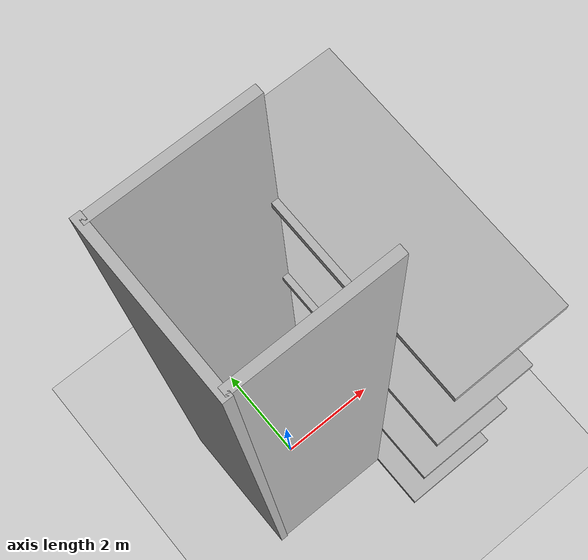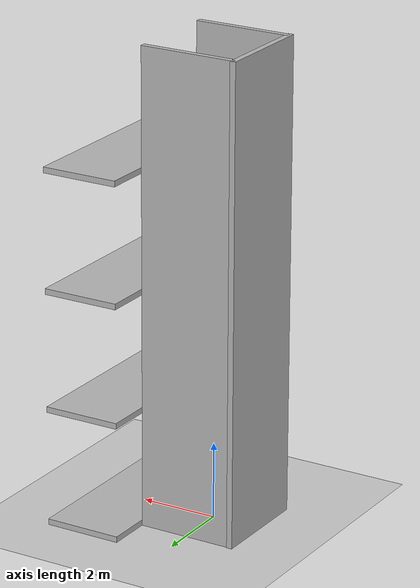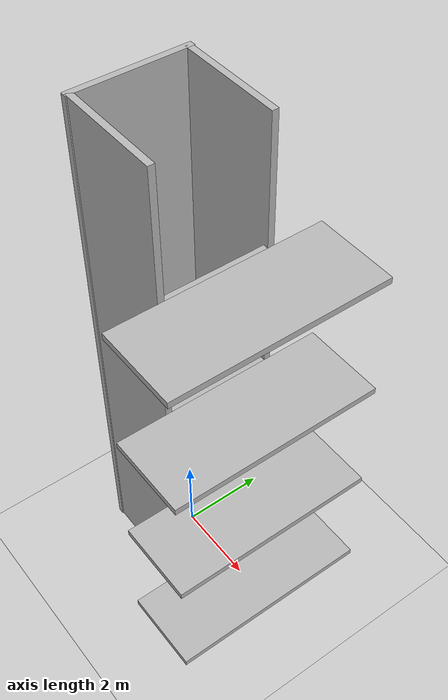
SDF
<?xml version="1.0" ?>
<sdf version="1.5">
  <world name="default">

    <!-- A global light source -->
    <include>
      <uri>model://sun</uri>
    </include>

    <!-- A ground plane -->
    <include>
      <uri>model://ground_plane</uri>
    </include>

    <!-- World plugin that publishes event messages.
         The topics used in these messages match up with topics used by the
         plugin in the elevator model below.
    -->
    <plugin filename="libSimEventsPlugin.so" name="elevator_event_plugin">
      <!-- Region on the ground floor, in front of the elevator -->
      <region>
        <name>region1</name>
        <volume>
          <min>1.5 -1 0</min>
          <max>2.5 1 1</max>
        </volume>
      </region>

      <!-- Region on the first floor, in front of the elevator -->
      <region>
        <name>region2</name>
        <volume>
          <min>1.5 -1 3</min>
          <max>2.5 1 4</max>
        </volume>
      </region>

      <!-- Event publisher for ground floor-->
      <event>
        <name>region1_event</name>
        <type>occupied</type>
        <region>region1</region>
        <topic>~/elevator</topic>
        <msg_data>0</msg_data>
      </event>

      <!-- Event publisher for first floor-->
      <event>
        <name>region2_event</name>
        <type>occupied</type>
        <region>region2</region>
        <topic>~/elevator</topic>
        <msg_data>1</msg_data>
      </event>
    </plugin>

    <!-- The elevator car -->
    <model name="elevator">
      <pose>0 0 0.075 0 0 0</pose>
      <link name="link">
        <inertial>
          <mass>800</mass>
        </inertial>

        <collision name="floor_collision">
          <geometry>
            <box>
              <size>2.25 2.25 0.15</size>
            </box>
          </geometry>
        </collision>
        <visual name="floor_visual">
          <geometry>
            <box>
              <size>2.25 2.25 0.15</size>
            </box>
          </geometry>
        </visual>

        <!-- wall1_collision is the wall to the right of the door, when
             facing the door -->
        <collision name="wall1_collision">
          <pose>1.0745 0.5725 1.125 0 0 0</pose>
          <geometry>
            <box>
              <size>0.1 1.15 2.25</size>
            </box>
          </geometry>
        </collision>
        <visual name="wall1_visual">
          <pose>1.0745 0.5725 1.125 0 0 0</pose>
          <geometry>
            <box>
              <size>0.1 1.15 2.25</size>
            </box>
          </geometry>
          <material>
            <script>
              <name>Gazebo/Red</name>
            </script>
          </material>
        </visual>

        <!-- wall2_collision is the wall to the left of the door, when
             facing the door -->
        <collision name="wall2_collision">
          <pose>1.0745 -1.0625 1.125 0 0 0</pose>
          <geometry>
            <box>
              <size>0.1 0.125 2.25</size>
            </box>
          </geometry>
        </collision>
        <visual name="wall2_visual">
          <pose>1.0745 -1.0625 1.125 0 0 0</pose>
          <geometry>
            <box>
              <size>0.1 0.125 2.25</size>
            </box>
          </geometry>
          <material>
            <script>
              <name>Gazebo/Red</name>
            </script>
          </material>
        </visual>
      </link>

      <link name="door">
        <pose>1.0745 -0.5 1.125 0 0 0</pose>
        <collision name="collision">
          <geometry>
            <box>
              <size>0.08 1.0 2.25</size>
            </box>
          </geometry>
        </collision>
        <visual name="visual">
          <geometry>
            <box>
              <size>0.08 1.0 2.25</size>
            </box>
          </geometry>
        </visual>
      </link>

      <joint name="door" type="prismatic">
        <parent>link</parent>
        <child>door</child>
        <axis>
          <xyz>0 1 0</xyz>
          <limit>
            <lower>0</lower>
            <upper>1</upper>
            <effort>10</effort>
          </limit>

          <dynamics>
            <damping>2</damping>
          </dynamics>
        </axis>
      </joint>

      <joint name="lift" type="prismatic">
        <parent>world</parent>
        <child>link</child>
        <axis>
          <xyz>0 0 1</xyz>
          <limit>
            <lower>0</lower>
            <upper>10</upper>
            <effort>100000</effort>
          </limit>

          <dynamics>
            <damping>50</damping>
          </dynamics>
        </axis>
        <physics>
          <ode>
            <implicit_spring_damper>1</implicit_spring_damper>
          </ode>
        </physics>
      </joint>

      <!-- Plugin to control the elevator -->
      <plugin filename="libElevatorPlugin.so" name="elevator_plugin">
        <lift_joint>elevator::lift</lift_joint>
        <door_joint>elevator::door</door_joint>
        <floor_height>3.075</floor_height>

        <!-- Time the elevator door will stay open in seconds -->
        <door_wait_time>10</door_wait_time>

        <!-- This topic is used to control the elevator -->
        <topic>~/elevator</topic>
      </plugin>
    </model>

    <!-- Elevator shaft -->
    <model name="elevator_shaft">
      <static>true</static>
      <link name="link">
        <collision name="shaft_wall1_collision">
          <pose>0 1.25 6.15 0 0 0</pose>
          <geometry>
            <box>
              <size>2.5 0.15 12.3</size>
            </box>
          </geometry>
        </collision>
        <visual name="shaft_wall1_visual">
          <pose>0 1.25 6.15 0 0 0</pose>
          <geometry>
            <box>
              <size>2.5 0.15 12.3</size>
            </box>
          </geometry>
        </visual>

        <collision name="shaft_wall2_collision">
          <pose>0 -1.25 6.15 0 0 0</pose>
          <geometry>
            <box>
              <size>2.5 0.15 12.3</size>
            </box>
          </geometry>
        </collision>
        <visual name="shaft_wall2_visual">
          <pose>0 -1.25 6.15 0 0 0</pose>
          <geometry>
            <box>
              <size>2.5 0.15 12.3</size>
            </box>
          </geometry>
        </visual>

        <collision name="shaft_wall3_collision">
          <pose>-1.25 0 6.15 0 0 0</pose>
          <geometry>
            <box>
              <size>0.15 2.7 12.3</size>
            </box>
          </geometry>
        </collision>
        <visual name="shaft_wall3_visual">
          <pose>-1.25 0 6.15 0 0 0</pose>
          <geometry>
            <box>
              <size>0.15 2.7 12.3</size>
            </box>
          </geometry>
        </visual>

  <!-- Collision - Floor outside elevator -->

        <collision name="floor0_collision">
          <pose>1.19 0 0.075 0 0 0</pose>
          <geometry>
            <box>
              <size>0.12 2.5 0.15</size>
            </box>
          </geometry>
        </collision>
        <visual name="floor0_visual">
          <pose>1.19 0 0.075 0 0 0</pose>
          <geometry>
            <box>
              <size>0.12 2.5 0.15</size>
            </box>
          </geometry>
        </visual>

        <collision name="floor1_collision">
          <pose>1.19 0 3.075 0 0 0</pose>
          <geometry>
            <box>
              <size>0.12 2.5 0.15</size>
            </box>
          </geometry>
        </collision>
        <visual name="floor1_visual">
          <pose>1.19 0 3.075 0 0 0</pose>
          <geometry>
            <box>
              <size>0.12 2.5 0.15</size>
            </box>
          </geometry>
        </visual>

     <collision name="floor2_collision">
          <pose>1.19 0 6.150 0 0 0</pose>
          <geometry>
            <box>
              <size>0.12 2.5 0.15</size>
            </box>
          </geometry>
      </collision>
        <visual name="floor2_visual">
          <pose>1.19 0 6.150 0 0 0</pose>
          <geometry>
            <box>
              <size>0.12 2.5 0.15</size>
            </box>
          </geometry>
        </visual>

    <collision name="floor3_collision">
          <pose>1.19 0 9.225 0 0 0</pose>
          <geometry>
            <box>
              <size>0.12 2.5 0.15</size>
            </box>
          </geometry>
      </collision>
        <visual name="floor3_visual">
          <pose>1.19 0 9.225 0 0 0</pose>
          <geometry>
            <box>
              <size>0.12 2.5 0.15</size>
            </box>
          </geometry>
        </visual>
      </link>
    </model>

  <!-- Floor outside elevator -->

    <model name="floor0">
      <pose>2.25 0 0.075 0 0 0</pose>
      <static>true</static>
      <link name="link">
        <collision name="floor_collision">
          <geometry>
            <box>
              <size>2.0 5.0 0.15</size>
            </box>
          </geometry>
        </collision>
        <visual name="floor_visual">
          <geometry>
            <box>
              <size>2.0 5.0 0.15</size>
            </box>
          </geometry>
        </visual>
      </link>
    </model>

    <model name="floor1">
      <pose>2.25 0 3.075 0 0 0</pose>
      <static>true</static>
      <link name="link">
        <collision name="floor_collision">
          <geometry>
            <box>
              <size>2.0 5.0 0.15</size>
            </box>
          </geometry>
        </collision>
        <visual name="floor_visual">
          <geometry>
            <box>
              <size>2.0 5.0 0.15</size>
            </box>
          </geometry>
        </visual>
      </link>
    </model>

     <model name="floor2">
      <pose>2.25 0 6.150 0 0 0</pose>
      <static>true</static>
      <link name="link">
        <collision name="floor_collision">
          <geometry>
            <box>
              <size>2.0 5.0 0.15</size>
            </box>
          </geometry>
        </collision>
        <visual name="floor_visual">
          <geometry>
            <box>
              <size>2.0 5.0 0.15</size>
            </box>
          </geometry>
        </visual>
      </link>
    </model>

    <model name="floor3">
      <pose>2.25 0 9.225 0 0 0</pose>
      <static>true</static>
      <link name="link">
        <collision name="floor_collision">
          <geometry>
            <box>
              <size>2.0 5.0 0.15</size>
            </box>
          </geometry>
        </collision>
        <visual name="floor_visual">
          <geometry>
            <box>
              <size>2.0 5.0 0.15</size>
            </box>
          </geometry>
        </visual>
      </link>
    </model>

  </world>
</sdf>
